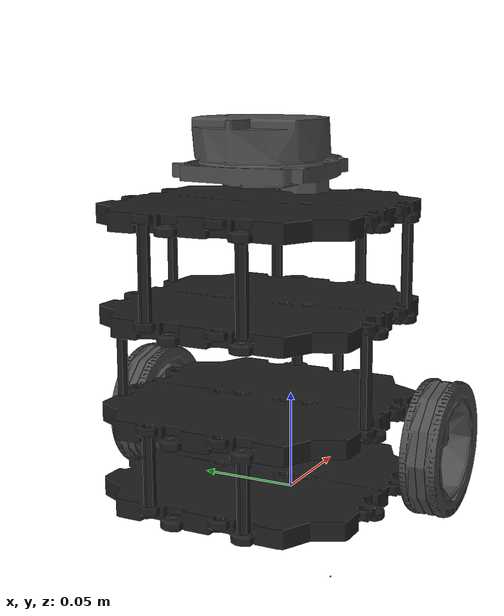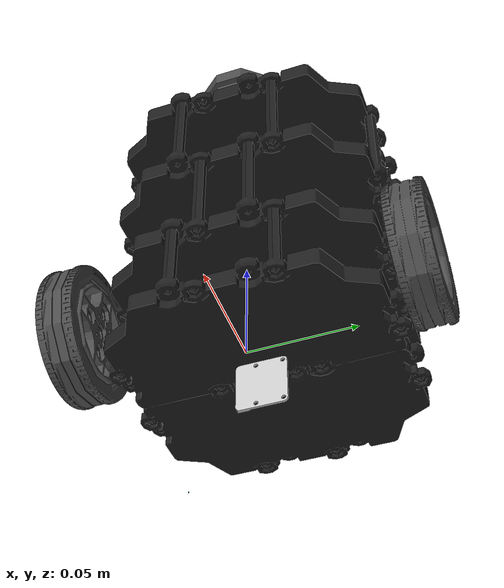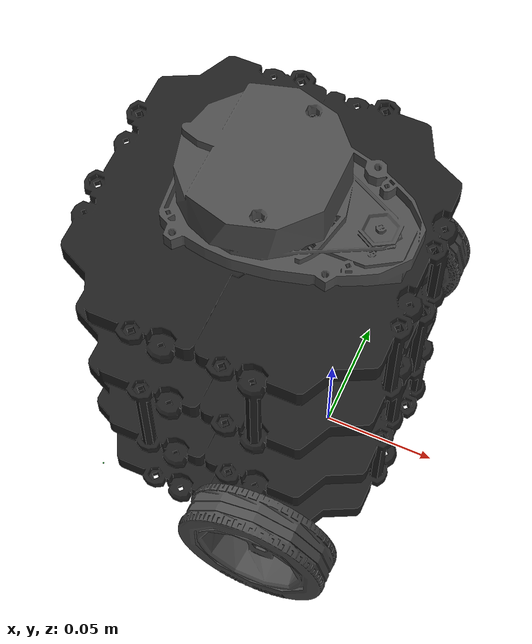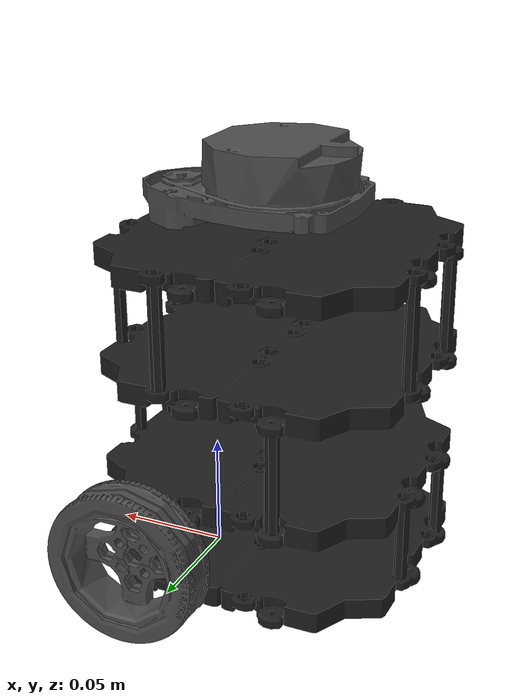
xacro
<?xml version="1.0" ?>
<robot name="turtlebot3_burger" xmlns:xacro="http://ros.org/wiki/xacro">
  <xacro:include filename="$(find turtlebot3_description)/urdf/common_properties.xacro"/>
  <xacro:include filename="$(find turtlebot3_description)/urdf/turtlebot3_burger.gazebo.xacro"/>
  <xacro:include filename="$(find turtlebot3_description)/urdf/sensors.xacro" />

  <link name="base_footprint"/>

  <joint name="base_joint" type="fixed">
    <parent link="base_footprint"/>
    <child link="base_link"/>
    <origin xyz="0.0 0.0 0.010" rpy="0 0 0"/>
  </joint>

  <link name="base_link">
    <visual>
      <origin xyz="-0.032 0 0.0" rpy="0 0 0"/>
      <geometry>
        <mesh filename="package://turtlebot3_description/meshes/bases/burger_base.dae" scale="0.001 0.001 0.001"/>
      </geometry>
      <material name="light_black"/>
    </visual>

    <collision>
      <origin xyz="-0.032 0 0.070" rpy="0 0 0"/>
      <geometry>
        <box size="0.140 0.140 0.140"/>
      </geometry>
    </collision>

    <inertial>
      <origin xyz="-0.032 0 0" rpy="0 0 0"/>
      <mass value="1"/>
      <inertia ixx="0.01" ixy="0.0" ixz="0.0"
               iyy="0.01" iyz="0.0"
               izz="0.01" />
    </inertial>
  </link>

  <joint name="wheel_left_joint" type="continuous">
    <parent link="base_link"/>
    <child link="wheel_left_link"/>
    <origin xyz="0.0 0.08 0.023" rpy="${-M_PI*0.5} 0 0"/>
    <axis xyz="0 0 1"/>
  </joint>

  <link name="wheel_left_link">
    <visual>
      <origin xyz="0 0 0" rpy="${M_PI*0.5} 0 0"/>
      <geometry>
        <mesh filename="package://turtlebot3_description/meshes/wheels/left_tire.dae" scale="0.001 0.001 0.001"/>
      </geometry>
      <material name="dark"/>
    </visual>

    <collision>
      <origin xyz="0 0 0" rpy="0 0 0"/>
      <geometry>
        <cylinder length="0.018" radius="0.033"/>
      </geometry>
    </collision>

    <inertial>
      <origin xyz="0 0 0" />
      <mass value="0.01" />
      <inertia ixx="0.001" ixy="0.0" ixz="0.0"
               iyy="0.001" iyz="0.0"
               izz="0.001" />
    </inertial>
  </link>

  <joint name="wheel_right_joint" type="continuous">
    <parent link="base_link"/>
    <child link="wheel_right_link"/>
    <origin xyz="0.0 -0.08 0.023" rpy="${-M_PI*0.5} 0 0"/>
    <axis xyz="0 0 1"/>
  </joint>

  <link name="wheel_right_link">
    <visual>
      <origin xyz="0 0 0" rpy="${M_PI*0.5} 0 0"/>
      <geometry>
        <mesh filename="package://turtlebot3_description/meshes/wheels/right_tire.dae" scale="0.001 0.001 0.001"/>
      </geometry>
      <material name="dark"/>
    </visual>

    <collision>
      <origin xyz="0 0 0" rpy="0 0 0"/>
      <geometry>
        <cylinder length="0.018" radius="0.033"/>
      </geometry>
    </collision>

    <inertial>
      <origin xyz="0 0 0" />
      <mass value="0.01" />
      <inertia ixx="0.001" ixy="0.0" ixz="0.0"
               iyy="0.001" iyz="0.0"
               izz="0.001" />
    </inertial>
  </link>

  <joint name="caster_back_joint" type="fixed">
    <parent link="base_link"/>
    <child link="caster_back_link"/>
    <origin xyz="-0.081 0 -0.004" rpy="${-M_PI*0.5} 0 0"/>
  </joint>

  <link name="caster_back_link">
    <collision>
      <origin xyz="0 0 0" rpy="0 0 0"/>
      <geometry>
        <box size="0.030 0.010 0.020"/>
      </geometry>
    </collision>

    <inertial>
      <origin xyz="0 0 0" />
      <mass value="0.01" />
      <inertia ixx="0.001" ixy="0.0" ixz="0.0"
               iyy="0.001" iyz="0.0"
               izz="0.001" />
    </inertial>
  </link>

  <joint name="imu_joint" type="fixed">
    <parent link="base_link"/>
    <child link="imu_link"/>
    <origin xyz="-0.032 0 0.068" rpy="0 0 0"/>
  </joint>

  <link name="imu_link"/>

  <joint name="scan_joint" type="fixed">
    <parent link="base_link"/>
    <child link="base_scan"/>
    <origin xyz="-0.032 0 0.171" rpy="0 0 0"/>
  </joint>

  <link name="base_scan">
    <visual>
      <origin xyz="0 0 0.0" rpy="0 0 0"/>
      <geometry>
        <mesh filename="package://turtlebot3_description/meshes/sensors/lds.dae" scale="0.001 0.001 0.001"/>
      </geometry>
      <material name="dark"/>
    </visual>

    <collision>
      <origin xyz="0 0 0" rpy="0 0 0"/>
      <geometry>
        <cylinder length="0.0408" radius="0.070"/>
      </geometry>
    </collision>

    <inertial>
      <mass value="0.01" />
      <origin xyz="0 0 0" />
      <inertia ixx="0.001" ixy="0.0" ixz="0.0"
               iyy="0.001" iyz="0.0"
               izz="0.001" />
    </inertial>
  </link>

  <xacro:rpi_camera parent="base_link" version="short"/>

</robot>

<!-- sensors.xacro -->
<robot xmlns:xacro="http://www.ros.org/wiki/xacro">

    <xacro:macro  name="rpi_camera" params="parent version">

        <xacro:if value="${version == 'long'}">
            <link name="camera_link">
                <visual>
                    <geometry>
                    <mesh filename="package://turtlebot3_description/meshes/sensors/rpi_camera_v2.dae"/>
                    </geometry>
                    <material name="camera_link_material">
                    <color rgba="0.8 0.8 0.8 1.0"/>
                    </material>
                </visual>
                <collision>
                    <geometry>
                    <mesh filename="package://turtlebot3_description/meshes/sensors/rpi_camera_v2.stl"/>
                    </geometry>
                </collision>
                <inertial>
                    <origin xyz="2.88715e-05 0.00248607 0.00813026" rpy="0 0 0"/>
                    <mass value="0.00217711"/>
                    <inertia ixx="2.12383e-07" ixy="6.03294e-10"  ixz="3.97667e-10" iyy="2.0411e-07" iyz="-1.46626e-09" izz="1.04162e-07" />
                </inertial>
            </link>
        </xacro:if>

        <xacro:if value="${version == 'short'}">
            <link name="camera_link">
                <visual>
                    <geometry>
                    <mesh filename="package://turtlebot3_description/meshes/sensors/rpi_camera_v2_short.dae"/>
                    </geometry>
                    <material name="camera_link_material">
                    <color rgba="0.8 0.8 0.8 1.0"/>
                    </material>
                </visual>
                <collision>
                    <geometry>
                    <mesh filename="package://turtlebot3_description/meshes/sensors/rpi_camera_v2_short.stl"/>
                    </geometry>
                </collision>
                <inertial>
                    <origin xyz="2.88715e-05 0.00248607 0.00813026" rpy="0 0 0"/>
                    <mass value="0.00217711"/>
                    <inertia ixx="2.12383e-07" ixy="6.03294e-10"  ixz="3.97667e-10" iyy="2.0411e-07" iyz="-1.46626e-09" izz="1.04162e-07" />
                </inertial>
            </link>
        </xacro:if>

        <joint name="chassis_1_camera_link_fixing" type="fixed">
            <origin xyz="-0.018139 0.000303 -0.01267" rpy="-1.57 0 3.14" />
            <parent link="${parent}" />
            <child link="camera_link" />
            <axis xyz="0 0 0"/>
        </joint>

        <link name="camera_link_frame">
            <!-- Inertial for gazebo to take it into account, Put 1gr weight -->
            <inertial>
                <origin xyz="0 0 0" rpy="0 0 0"/>
                <mass value="0.001" />
                <inertia ixx="9.1875e-09" ixy="0.0" ixz="0.0" iyy="9.1875e-09" iyz="0.0" izz="1.378125e-08"/>
            </inertial>
            <visual>
                <origin rpy="0.0 0 0" xyz="0 0 0"/>
                <geometry>
                    <box size="0.0005 0.0005 0.0005"/>
                </geometry>
                <material name="green"/>
            </visual>
        </link>

        <gazebo reference="camera_link_frame">
            <material>Gazebo/Green</material>
        </gazebo>

        <xacro:if value="${version == 'long'}">
            <joint name="camera_frame_joint" type="fixed">
                <origin xyz="0.0671392 0.0 0.0220048" rpy="0 0 0" />
                <parent link="camera_link" />
                <child link="camera_link_frame" />
                <axis xyz="0 0 0"/>
            </joint>
        </xacro:if>

        <xacro:if value="${version == 'short'}">
            <joint name="camera_frame_joint" type="fixed">
                <origin xyz="0.0671392 0.0 0.0614643" rpy="0 0 0" />
                <parent link="camera_link" />
                <child link="camera_link_frame" />
                <axis xyz="0 0 0"/>
            </joint>
        </xacro:if>

        <gazebo reference="camera_link_frame">
            <sensor type="camera" name="cam">
            <update_rate>10.0</update_rate>
            <camera name="raspv2">

                <pose>0 0 0 0 0 0</pose>

                <horizontal_fov>1.3962634</horizontal_fov>
                <image>
                <width>240</width>
                <height>240</height>
                <format>R8G8B8</format>
                </image>
                <clip>
                    <near>0.005</near>
                    <far>20.0</far>
                </clip>
            </camera>
            <plugin name="camera_controller" filename="libgazebo_ros_camera.so">
                <alwaysOn>true</alwaysOn>
                <updateRate>0.0</updateRate>
                <cameraName>turtlebot3/cam</cameraName>
                <imageTopicName>image_raw</imageTopicName>
                <cameraInfoTopicName>camera_info</cameraInfoTopicName>
                <frameName>camera_link_frame</frameName>
                <hackBaseline>0.07</hackBaseline>
                <distortionK1>0.0</distortionK1>
                <distortionK2>0.0</distortionK2>
                <distortionK3>0.0</distortionK3>
                <distortionT1>0.0</distortionT1>
                <distortionT2>0.0</distortionT2>
            </plugin>
            </sensor>
        </gazebo>

    </xacro:macro >
</robot>
